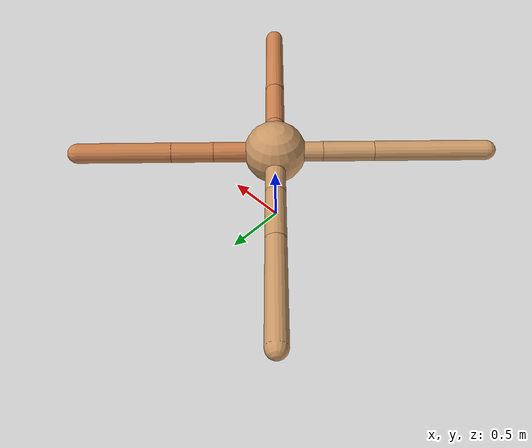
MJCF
<mujoco model="ant">
  <compiler angle="degree" coordinate="local" inertiafromgeom="true" />
  <option integrator="RK4" timestep="0.01" />
  <custom>
    <numeric data="0.0 0.0 0.55 1.0 0.0 0.0 0.0 0.0 1.0 0.0 -1.0 0.0 -1.0 0.0 1.0" name="init_qpos" />
  </custom>
  <default>
    <joint armature="1" damping="1" limited="true" />
    <geom conaffinity="0" condim="3" density="5.0" friction="1.5 0.1 0.1" margin="0.01" rgba="0.8 0.6 0.4 1" />
  </default>
  <worldbody>
    <body name="torso" pos="0 0 0.75">
      <geom name="torso_geom" pos="0 0 0" size="0.25" type="sphere" />

      <body name="front_left_leg" pos="0 0 0">
        <geom fromto="0.0 0.0 0.0 0.3484534416854037 0.3484534416854037 0.0" name="aux_1_geom" size="0.08" type="capsule" rgba=".8 .5 .3 1" />
        <body name="aux_1" pos="0.3484534416854037 0.3484534416854037 0.0">
          <joint axis="0 0 1" name="hip_1" pos="0.0 0.0 0.0" range="-40 40" type="hinge" />
          <geom fromto="0.0 0.0 0.0 0.23805561096096778 0.23805561096096778 0.0" name="left_leg_geom" size="0.08" type="capsule" rgba=".8 .5 .3 1" />
          <body pos="0.23805561096096778 0.23805561096096778 0.0" name="front_left_foot">
            <joint axis="-1 1 0" name="ankle_1" pos="0.0 0.0 0.0" range="30 100" type="hinge" />
            <geom fromto="0.0 0.0 0.0 0.5344841121153663 0.5344841121153663 0.0" name="left_ankle_geom" size="0.08" type="capsule" rgba=".8 .5 .3 1" />
          </body>
        </body>
      </body>
      <body name="front_right_leg" pos="0 0 0">
        <geom fromto="0.0 0.0 0.0 -0.3213239240264147 0.3213239240264147 0.0" name="aux_2_geom" size="0.08" type="capsule" />
        <body name="aux_2" pos="-0.3213239240264147 0.3213239240264147 0.0">
          <joint axis="0 0 1" name="hip_2" pos="0.0 0.0 0.0" range="-40 40" type="hinge" />
          <geom fromto="0.0 0.0 0.0 -0.3162805384854033 0.3162805384854033 0.0" name="right_leg_geom" size="0.08" type="capsule" />
          <body pos="-0.3162805384854033 0.3162805384854033 0.0" name="front_right_foot">
            <joint axis="1 1 0" name="ankle_2" pos="0.0 0.0 0.0" range="-100 -30" type="hinge" />
            <geom fromto="0.0 0.0 0.0 -0.5894239339984771 0.5894239339984771 0.0" name="right_ankle_geom" size="0.08" type="capsule" />
          </body>
        </body>
      </body>
      <body name="left_back_leg" pos="0 0 0">
        <geom fromto="0.0 0.0 0.0 -0.2712644026561496 -0.2712644026561496 0.0" name="aux_3_geom" size="0.08" type="capsule" />
        <body name="aux_3" pos="-0.2712644026561496 -0.2712644026561496 0.0">
          <joint axis="0 0 1" name="hip_3" pos="0.0 0.0 0.0" range="-40 40" type="hinge" />
          <geom fromto="0.0 0.0 0.0 -0.29008253472418555 -0.29008253472418555 0.0" name="back_leg_geom" size="0.08" type="capsule" />
          <body pos="-0.29008253472418555 -0.29008253472418555 0.0" name="left_back_foot">
            <joint axis="-1 1 0" name="ankle_3" pos="0.0 0.0 0.0" range="-100 -30" type="hinge" />
            <geom fromto="0.0 0.0 0.0 -0.6385452367055046 -0.6385452367055046 0.0" name="third_ankle_geom" size="0.08" type="capsule" />
          </body>
        </body>
      </body>
      <body name="right_back_leg" pos="0 0 0">
        <geom fromto="0.0 0.0 0.0 0.2339927191023432 -0.2339927191023432 0.0" name="aux_4_geom" size="0.08" type="capsule" rgba=".8 .5 .3 1" />
        <body name="aux_4" pos="0.2339927191023432 -0.2339927191023432 0.0">
          <joint axis="0 0 1" name="hip_4" pos="0.0 0.0 0.0" range="-40 40" type="hinge" />
          <geom fromto="0.0 0.0 0.0 0.3290829761374454 -0.3290829761374454 0.0" name="rightback_leg_geom" size="0.08" type="capsule" rgba=".8 .5 .3 1" />
          <body pos="0.3290829761374454 -0.3290829761374454 0.0" name="right_back_foot">
            <joint axis="1 1 0" name="ankle_4" pos="0.0 0.0 0.0" range="30 100" type="hinge" />
            <geom fromto="0.0 0.0 0.0 0.5884422946397962 -0.5884422946397962 0.0" name="fourth_ankle_geom" size="0.08" type="capsule" rgba=".8 .5 .3 1" />
          </body>
        </body>
      </body>
    </body>
  </worldbody>
  <actuator>
    <motor ctrllimited="true" ctrlrange="-1.0 1.0" joint="hip_4" gear="150" />
    <motor ctrllimited="true" ctrlrange="-1.0 1.0" joint="ankle_4" gear="150" />
    <motor ctrllimited="true" ctrlrange="-1.0 1.0" joint="hip_1" gear="150" />
    <motor ctrllimited="true" ctrlrange="-1.0 1.0" joint="ankle_1" gear="150" />
    <motor ctrllimited="true" ctrlrange="-1.0 1.0" joint="hip_2" gear="150" />
    <motor ctrllimited="true" ctrlrange="-1.0 1.0" joint="ankle_2" gear="150" />
    <motor ctrllimited="true" ctrlrange="-1.0 1.0" joint="hip_3" gear="150" />
    <motor ctrllimited="true" ctrlrange="-1.0 1.0" joint="ankle_3" gear="150" />
  </actuator>
</mujoco>
